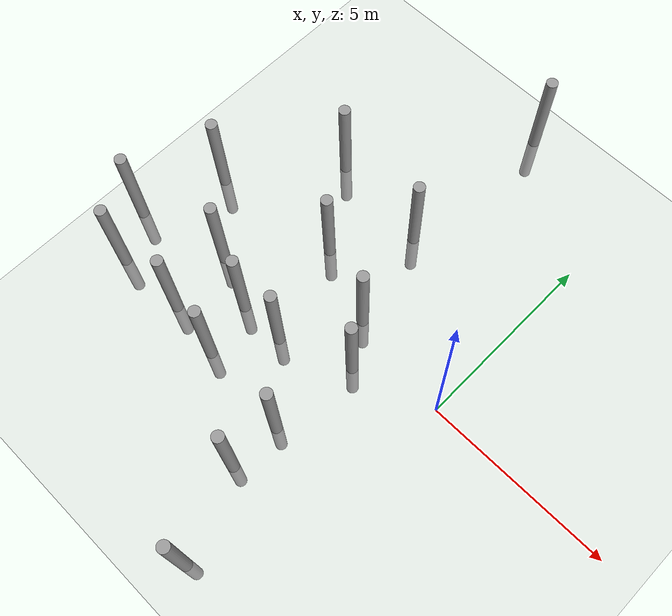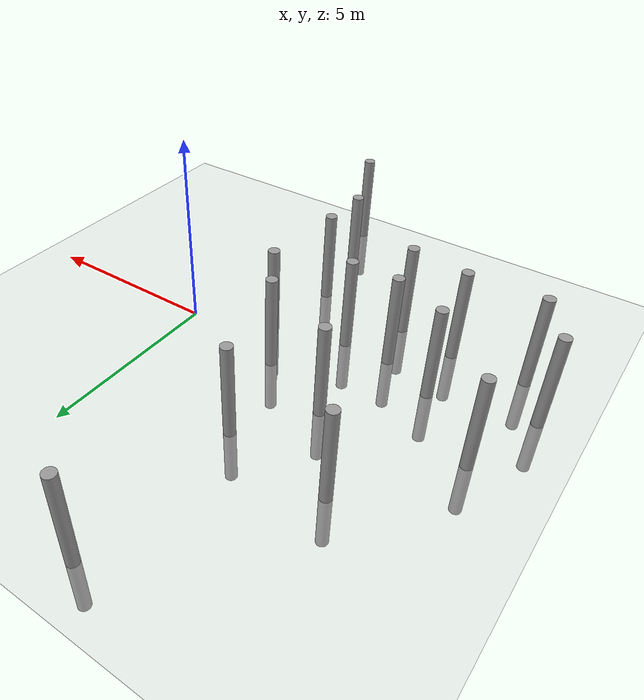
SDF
<sdf version="1.6">
 <world name="default">
  <model name="ground_plane">
   <static>1</static>
   <link name="link">
    <collision name="collision">
     <geometry><plane><normal>0 0 1</normal><size>100 100</size></plane></geometry>
     <surface><friction><ode><mu>100</mu><mu2>50</mu2></ode></friction></surface>
    </collision>
    <visual name="visual">
     <cast_shadows>0</cast_shadows>
     <geometry><plane><normal>0 0 1</normal><size>100 100</size></plane></geometry>
     <material>
      <script><uri>file://media/materials/scripts/gazebo.material</uri><name>Gazebo/Grey</name></script>
     </material>
    </visual>
   </link>
  </model>
  <model name="unit_cylinder">
   <link name="link">
    <inertial>
     <mass>1000</mass>
     <inertia><ixx>145.833</ixx><ixy>0</ixy><ixz>0</ixz><iyy>145.833</iyy><iyz>0</iyz><izz>125</izz></inertia>
    </inertial>
    <visual name="visual">
     <geometry><cylinder><radius>0.15</radius><length>4</length></cylinder></geometry>
     <material>
      <script><name>Gazebo/Grey</name><uri>file://media/materials/scripts/gazebo.material</uri></script>
      <shader type="pixel"><normal_map>__default__</normal_map></shader>
      <ambient>0.3 0.3 0.3 1</ambient>
      <diffuse>0.7 0.7 0.7 1</diffuse>
      <specular>0.01 0.01 0.01 1</specular>
      <emissive>0 0 0 1</emissive>
     </material>
    </visual>
    <collision name="collision">
     <geometry><cylinder><radius>0.15</radius><length>4</length></cylinder></geometry>
     <surface>
      <friction>
       <ode><mu>1</mu><mu2>1</mu2><fdir1>0 0 0</fdir1><slip1>0</slip1><slip2>0</slip2></ode>
       <torsional>
        <coefficient>1</coefficient>
        <patch_radius>0</patch_radius>
        <surface_radius>0</surface_radius>
        <use_patch_radius>1</use_patch_radius>
        <ode><slip>0</slip></ode>
       </torsional>
      </friction>
      <bounce><restitution_coefficient>0</restitution_coefficient><threshold>1e+06</threshold></bounce>
      <contact>
       <collide_without_contact>0</collide_without_contact>
       <collide_without_contact_bitmask>1</collide_without_contact_bitmask>
       <collide_bitmask>1</collide_bitmask>
       <ode>
        <soft_cfm>0</soft_cfm>
        <soft_erp>0.2</soft_erp>
        <kp>1e+13</kp>
        <kd>1</kd>
        <max_vel>0.01</max_vel>
        <min_depth>0</min_depth>
       </ode>
       <bullet>
        <split_impulse>1</split_impulse>
        <split_impulse_penetration_threshold>-0.01</split_impulse_penetration_threshold>
        <soft_cfm>0</soft_cfm>
        <soft_erp>0.2</soft_erp>
        <kp>1e+13</kp>
        <kd>1</kd>
       </bullet>
      </contact>
     </surface>
    </collision>
   </link>
   <static>0</static>
   <pose>-2.17183 -0.620894 0.5 0 -0 0</pose>
  </model>
  <model name="unit_cylinder_clone_4">
   <link name="link">
    <inertial>
     <mass>1000</mass>
     <inertia><ixx>145.833</ixx><ixy>0</ixy><ixz>0</ixz><iyy>145.833</iyy><iyz>0</iyz><izz>125</izz></inertia>
    </inertial>
    <visual name="visual">
     <geometry><cylinder><radius>0.15</radius><length>4</length></cylinder></geometry>
     <material>
      <script><name>Gazebo/Grey</name><uri>file://media/materials/scripts/gazebo.material</uri></script>
      <shader type="pixel"><normal_map>__default__</normal_map></shader>
      <ambient>0.3 0.3 0.3 1</ambient>
      <diffuse>0.7 0.7 0.7 1</diffuse>
      <specular>0.01 0.01 0.01 1</specular>
      <emissive>0 0 0 1</emissive>
     </material>
    </visual>
    <collision name="collision">
     <geometry><cylinder><radius>0.15</radius><length>4</length></cylinder></geometry>
     <surface>
      <friction>
       <ode><mu>1</mu><mu2>1</mu2><fdir1>0 0 0</fdir1><slip1>0</slip1><slip2>0</slip2></ode>
       <torsional>
        <coefficient>1</coefficient>
        <patch_radius>0</patch_radius>
        <surface_radius>0</surface_radius>
        <use_patch_radius>1</use_patch_radius>
        <ode><slip>0</slip></ode>
       </torsional>
      </friction>
      <bounce><restitution_coefficient>0</restitution_coefficient><threshold>1e+06</threshold></bounce>
      <contact>
       <collide_without_contact>0</collide_without_contact>
       <collide_without_contact_bitmask>1</collide_without_contact_bitmask>
       <collide_bitmask>1</collide_bitmask>
       <ode>
        <soft_cfm>0</soft_cfm>
        <soft_erp>0.2</soft_erp>
        <kp>1e+13</kp>
        <kd>1</kd>
        <max_vel>0.01</max_vel>
        <min_depth>0</min_depth>
       </ode>
       <bullet>
        <split_impulse>1</split_impulse>
        <split_impulse_penetration_threshold>-0.01</split_impulse_penetration_threshold>
        <soft_cfm>0</soft_cfm>
        <soft_erp>0.2</soft_erp>
        <kp>1e+13</kp>
        <kd>1</kd>
       </bullet>
      </contact>
     </surface>
    </collision>
   </link>
   <static>0</static>
   <pose>-3.98102 -1.3286 0.5 0 -0 0</pose>
  </model>
  <model name="unit_cylinder_clone_5">
   <link name="link">
    <inertial>
     <mass>1000</mass>
     <inertia><ixx>145.833</ixx><ixy>0</ixy><ixz>0</ixz><iyy>145.833</iyy><iyz>0</iyz><izz>125</izz></inertia>
    </inertial>
    <visual name="visual">
     <geometry><cylinder><radius>0.15</radius><length>4</length></cylinder></geometry>
     <material>
      <script><name>Gazebo/Grey</name><uri>file://media/materials/scripts/gazebo.material</uri></script>
      <shader type="pixel"><normal_map>__default__</normal_map></shader>
      <ambient>0.3 0.3 0.3 1</ambient>
      <diffuse>0.7 0.7 0.7 1</diffuse>
      <specular>0.01 0.01 0.01 1</specular>
      <emissive>0 0 0 1</emissive>
     </material>
    </visual>
    <collision name="collision">
     <geometry><cylinder><radius>0.15</radius><length>4</length></cylinder></geometry>
     <surface>
      <friction>
       <ode><mu>1</mu><mu2>1</mu2><fdir1>0 0 0</fdir1><slip1>0</slip1><slip2>0</slip2></ode>
       <torsional>
        <coefficient>1</coefficient>
        <patch_radius>0</patch_radius>
        <surface_radius>0</surface_radius>
        <use_patch_radius>1</use_patch_radius>
        <ode><slip>0</slip></ode>
       </torsional>
      </friction>
      <bounce><restitution_coefficient>0</restitution_coefficient><threshold>1e+06</threshold></bounce>
      <contact>
       <collide_without_contact>0</collide_without_contact>
       <collide_without_contact_bitmask>1</collide_without_contact_bitmask>
       <collide_bitmask>1</collide_bitmask>
       <ode>
        <soft_cfm>0</soft_cfm>
        <soft_erp>0.2</soft_erp>
        <kp>1e+13</kp>
        <kd>1</kd>
        <max_vel>0.01</max_vel>
        <min_depth>0</min_depth>
       </ode>
       <bullet>
        <split_impulse>1</split_impulse>
        <split_impulse_penetration_threshold>-0.01</split_impulse_penetration_threshold>
        <soft_cfm>0</soft_cfm>
        <soft_erp>0.2</soft_erp>
        <kp>1e+13</kp>
        <kd>1</kd>
       </bullet>
      </contact>
     </surface>
    </collision>
   </link>
   <static>0</static>
   <pose>-4.8156 1.25326 0.5 0 -0 0</pose>
  </model>
  <model name="unit_cylinder_clone_6">
   <link name="link">
    <inertial>
     <mass>1000</mass>
     <inertia><ixx>145.833</ixx><ixy>0</ixy><ixz>0</ixz><iyy>145.833</iyy><iyz>0</iyz><izz>125</izz></inertia>
    </inertial>
    <visual name="visual">
     <geometry><cylinder><radius>0.15</radius><length>4</length></cylinder></geometry>
     <material>
      <script><name>Gazebo/Grey</name><uri>file://media/materials/scripts/gazebo.material</uri></script>
      <shader type="pixel"><normal_map>__default__</normal_map></shader>
      <ambient>0.3 0.3 0.3 1</ambient>
      <diffuse>0.7 0.7 0.7 1</diffuse>
      <specular>0.01 0.01 0.01 1</specular>
      <emissive>0 0 0 1</emissive>
     </material>
    </visual>
    <collision name="collision">
     <geometry><cylinder><radius>0.15</radius><length>4</length></cylinder></geometry>
     <surface>
      <friction>
       <ode><mu>1</mu><mu2>1</mu2><fdir1>0 0 0</fdir1><slip1>0</slip1><slip2>0</slip2></ode>
       <torsional>
        <coefficient>1</coefficient>
        <patch_radius>0</patch_radius>
        <surface_radius>0</surface_radius>
        <use_patch_radius>1</use_patch_radius>
        <ode><slip>0</slip></ode>
       </torsional>
      </friction>
      <bounce><restitution_coefficient>0</restitution_coefficient><threshold>1e+06</threshold></bounce>
      <contact>
       <collide_without_contact>0</collide_without_contact>
       <collide_without_contact_bitmask>1</collide_without_contact_bitmask>
       <collide_bitmask>1</collide_bitmask>
       <ode>
        <soft_cfm>0</soft_cfm>
        <soft_erp>0.2</soft_erp>
        <kp>1e+13</kp>
        <kd>1</kd>
        <max_vel>0.01</max_vel>
        <min_depth>0</min_depth>
       </ode>
       <bullet>
        <split_impulse>1</split_impulse>
        <split_impulse_penetration_threshold>-0.01</split_impulse_penetration_threshold>
        <soft_cfm>0</soft_cfm>
        <soft_erp>0.2</soft_erp>
        <kp>1e+13</kp>
        <kd>1</kd>
       </bullet>
      </contact>
     </surface>
    </collision>
   </link>
   <static>0</static>
   <pose>-3.52334 3 0.5 0 -0 0</pose>
  </model>
  <model name="unit_cylinder_clone_7">
   <link name="link">
    <inertial>
     <mass>1000</mass>
     <inertia><ixx>145.833</ixx><ixy>0</ixy><ixz>0</ixz><iyy>145.833</iyy><iyz>0</iyz><izz>125</izz></inertia>
    </inertial>
    <visual name="visual">
     <geometry><cylinder><radius>0.15</radius><length>4</length></cylinder></geometry>
     <material>
      <script><name>Gazebo/Grey</name><uri>file://media/materials/scripts/gazebo.material</uri></script>
      <shader type="pixel"><normal_map>__default__</normal_map></shader>
      <ambient>0.3 0.3 0.3 1</ambient>
      <diffuse>0.7 0.7 0.7 1</diffuse>
      <specular>0.01 0.01 0.01 1</specular>
      <emissive>0 0 0 1</emissive>
     </material>
    </visual>
    <collision name="collision">
     <geometry><cylinder><radius>0.15</radius><length>4</length></cylinder></geometry>
     <surface>
      <friction>
       <ode><mu>1</mu><mu2>1</mu2><fdir1>0 0 0</fdir1><slip1>0</slip1><slip2>0</slip2></ode>
       <torsional>
        <coefficient>1</coefficient>
        <patch_radius>0</patch_radius>
        <surface_radius>0</surface_radius>
        <use_patch_radius>1</use_patch_radius>
        <ode><slip>0</slip></ode>
       </torsional>
      </friction>
      <bounce><restitution_coefficient>0</restitution_coefficient><threshold>1e+06</threshold></bounce>
      <contact>
       <collide_without_contact>0</collide_without_contact>
       <collide_without_contact_bitmask>1</collide_without_contact_bitmask>
       <collide_bitmask>1</collide_bitmask>
       <ode>
        <soft_cfm>0</soft_cfm>
        <soft_erp>0.2</soft_erp>
        <kp>1e+13</kp>
        <kd>1</kd>
        <max_vel>0.01</max_vel>
        <min_depth>0</min_depth>
       </ode>
       <bullet>
        <split_impulse>1</split_impulse>
        <split_impulse_penetration_threshold>-0.01</split_impulse_penetration_threshold>
        <soft_cfm>0</soft_cfm>
        <soft_erp>0.2</soft_erp>
        <kp>1e+13</kp>
        <kd>1</kd>
       </bullet>
      </contact>
     </surface>
    </collision>
   </link>
   <static>0</static>
   <pose>-2.40002 -2.93205 0.5 0 -0 0</pose>
  </model>
  <model name="unit_cylinder_clone_8">
   <link name="link">
    <inertial>
     <mass>1000</mass>
     <inertia><ixx>145.833</ixx><ixy>0</ixy><ixz>0</ixz><iyy>145.833</iyy><iyz>0</iyz><izz>125</izz></inertia>
    </inertial>
    <visual name="visual">
     <geometry><cylinder><radius>0.15</radius><length>4</length></cylinder></geometry>
     <material>
      <script><name>Gazebo/Grey</name><uri>file://media/materials/scripts/gazebo.material</uri></script>
      <shader type="pixel"><normal_map>__default__</normal_map></shader>
      <ambient>0.3 0.3 0.3 1</ambient>
      <diffuse>0.7 0.7 0.7 1</diffuse>
      <specular>0.01 0.01 0.01 1</specular>
      <emissive>0 0 0 1</emissive>
     </material>
    </visual>
    <collision name="collision">
     <geometry><cylinder><radius>0.15</radius><length>4</length></cylinder></geometry>
     <surface>
      <friction>
       <ode><mu>1</mu><mu2>1</mu2><fdir1>0 0 0</fdir1><slip1>0</slip1><slip2>0</slip2></ode>
       <torsional>
        <coefficient>1</coefficient>
        <patch_radius>0</patch_radius>
        <surface_radius>0</surface_radius>
        <use_patch_radius>1</use_patch_radius>
        <ode><slip>0</slip></ode>
       </torsional>
      </friction>
      <bounce><restitution_coefficient>0</restitution_coefficient><threshold>1e+06</threshold></bounce>
      <contact>
       <collide_without_contact>0</collide_without_contact>
       <collide_without_contact_bitmask>1</collide_without_contact_bitmask>
       <collide_bitmask>1</collide_bitmask>
       <ode>
        <soft_cfm>0</soft_cfm>
        <soft_erp>0.2</soft_erp>
        <kp>1e+13</kp>
        <kd>1</kd>
        <max_vel>0.01</max_vel>
        <min_depth>0</min_depth>
       </ode>
       <bullet>
        <split_impulse>1</split_impulse>
        <split_impulse_penetration_threshold>-0.01</split_impulse_penetration_threshold>
        <soft_cfm>0</soft_cfm>
        <soft_erp>0.2</soft_erp>
        <kp>1e+13</kp>
        <kd>1</kd>
       </bullet>
      </contact>
     </surface>
    </collision>
   </link>
   <static>0</static>
   <pose>-2.8562 0.444252 0.5 0 -0 0</pose>
  </model>
  <model name="unit_cylinder_clone_10">
   <link name="link">
    <inertial>
     <mass>1000</mass>
     <inertia><ixx>145.833</ixx><ixy>0</ixy><ixz>0</ixz><iyy>145.833</iyy><iyz>0</iyz><izz>125</izz></inertia>
    </inertial>
    <visual name="visual">
     <geometry><cylinder><radius>0.15</radius><length>4</length></cylinder></geometry>
     <material>
      <script><name>Gazebo/Grey</name><uri>file://media/materials/scripts/gazebo.material</uri></script>
      <shader type="pixel"><normal_map>__default__</normal_map></shader>
      <ambient>0.3 0.3 0.3 1</ambient>
      <diffuse>0.7 0.7 0.7 1</diffuse>
      <specular>0.01 0.01 0.01 1</specular>
      <emissive>0 0 0 1</emissive>
     </material>
    </visual>
    <collision name="collision">
     <geometry><cylinder><radius>0.15</radius><length>4</length></cylinder></geometry>
     <surface>
      <friction>
       <ode><mu>1</mu><mu2>1</mu2><fdir1>0 0 0</fdir1><slip1>0</slip1><slip2>0</slip2></ode>
       <torsional>
        <coefficient>1</coefficient>
        <patch_radius>0</patch_radius>
        <surface_radius>0</surface_radius>
        <use_patch_radius>1</use_patch_radius>
        <ode><slip>0</slip></ode>
       </torsional>
      </friction>
      <bounce><restitution_coefficient>0</restitution_coefficient><threshold>1e+06</threshold></bounce>
      <contact>
       <collide_without_contact>0</collide_without_contact>
       <collide_without_contact_bitmask>1</collide_without_contact_bitmask>
       <collide_bitmask>1</collide_bitmask>
       <ode>
        <soft_cfm>0</soft_cfm>
        <soft_erp>0.2</soft_erp>
        <kp>1e+13</kp>
        <kd>1</kd>
        <max_vel>0.01</max_vel>
        <min_depth>0</min_depth>
       </ode>
       <bullet>
        <split_impulse>1</split_impulse>
        <split_impulse_penetration_threshold>-0.01</split_impulse_penetration_threshold>
        <soft_cfm>0</soft_cfm>
        <soft_erp>0.2</soft_erp>
        <kp>1e+13</kp>
        <kd>1</kd>
       </bullet>
      </contact>
     </surface>
    </collision>
   </link>
   <static>0</static>
   <pose>-6.4237 -2.50142 0.5 0 -0 0</pose>
  </model>
  <model name="unit_cylinder_clone_11">
   <link name="link">
    <inertial>
     <mass>1000</mass>
     <inertia><ixx>145.833</ixx><ixy>0</ixy><ixz>0</ixz><iyy>145.833</iyy><iyz>0</iyz><izz>125</izz></inertia>
    </inertial>
    <visual name="visual">
     <geometry><cylinder><radius>0.15</radius><length>4</length></cylinder></geometry>
     <material>
      <script><name>Gazebo/Grey</name><uri>file://media/materials/scripts/gazebo.material</uri></script>
      <shader type="pixel"><normal_map>__default__</normal_map></shader>
      <ambient>0.3 0.3 0.3 1</ambient>
      <diffuse>0.7 0.7 0.7 1</diffuse>
      <specular>0.01 0.01 0.01 1</specular>
      <emissive>0 0 0 1</emissive>
     </material>
    </visual>
    <collision name="collision">
     <geometry><cylinder><radius>0.15</radius><length>4</length></cylinder></geometry>
     <surface>
      <friction>
       <ode><mu>1</mu><mu2>1</mu2><fdir1>0 0 0</fdir1><slip1>0</slip1><slip2>0</slip2></ode>
       <torsional>
        <coefficient>1</coefficient>
        <patch_radius>0</patch_radius>
        <surface_radius>0</surface_radius>
        <use_patch_radius>1</use_patch_radius>
        <ode><slip>0</slip></ode>
       </torsional>
      </friction>
      <bounce><restitution_coefficient>0</restitution_coefficient><threshold>1e+06</threshold></bounce>
      <contact>
       <collide_without_contact>0</collide_without_contact>
       <collide_without_contact_bitmask>1</collide_without_contact_bitmask>
       <collide_bitmask>1</collide_bitmask>
       <ode>
        <soft_cfm>0</soft_cfm>
        <soft_erp>0.2</soft_erp>
        <kp>1e+13</kp>
        <kd>1</kd>
        <max_vel>0.01</max_vel>
        <min_depth>0</min_depth>
       </ode>
       <bullet>
        <split_impulse>1</split_impulse>
        <split_impulse_penetration_threshold>-0.01</split_impulse_penetration_threshold>
        <soft_cfm>0</soft_cfm>
        <soft_erp>0.2</soft_erp>
        <kp>1e+13</kp>
        <kd>1</kd>
       </bullet>
      </contact>
     </surface>
    </collision>
   </link>
   <static>0</static>
   <pose>-4.89766 -2.73786 0.5 0 -0 0</pose>
  </model>
  <model name="unit_cylinder_clone_13">
   <link name="link">
    <inertial>
     <mass>1000</mass>
     <inertia><ixx>145.833</ixx><ixy>0</ixy><ixz>0</ixz><iyy>145.833</iyy><iyz>0</iyz><izz>125</izz></inertia>
    </inertial>
    <visual name="visual">
     <geometry><cylinder><radius>0.15</radius><length>4</length></cylinder></geometry>
     <material>
      <script><name>Gazebo/Grey</name><uri>file://media/materials/scripts/gazebo.material</uri></script>
      <shader type="pixel"><normal_map>__default__</normal_map></shader>
      <ambient>0.3 0.3 0.3 1</ambient>
      <diffuse>0.7 0.7 0.7 1</diffuse>
      <specular>0.01 0.01 0.01 1</specular>
      <emissive>0 0 0 1</emissive>
     </material>
    </visual>
    <collision name="collision">
     <geometry><cylinder><radius>0.15</radius><length>4</length></cylinder></geometry>
     <surface>
      <friction>
       <ode><mu>1</mu><mu2>1</mu2><fdir1>0 0 0</fdir1><slip1>0</slip1><slip2>0</slip2></ode>
       <torsional>
        <coefficient>1</coefficient>
        <patch_radius>0</patch_radius>
        <surface_radius>0</surface_radius>
        <use_patch_radius>1</use_patch_radius>
        <ode><slip>0</slip></ode>
       </torsional>
      </friction>
      <bounce><restitution_coefficient>0</restitution_coefficient><threshold>1e+06</threshold></bounce>
      <contact>
       <collide_without_contact>0</collide_without_contact>
       <collide_without_contact_bitmask>1</collide_without_contact_bitmask>
       <collide_bitmask>1</collide_bitmask>
       <ode>
        <soft_cfm>0</soft_cfm>
        <soft_erp>0.2</soft_erp>
        <kp>1e+13</kp>
        <kd>1</kd>
        <max_vel>0.01</max_vel>
        <min_depth>0</min_depth>
       </ode>
       <bullet>
        <split_impulse>1</split_impulse>
        <split_impulse_penetration_threshold>-0.01</split_impulse_penetration_threshold>
        <soft_cfm>0</soft_cfm>
        <soft_erp>0.2</soft_erp>
        <kp>1e+13</kp>
        <kd>1</kd>
       </bullet>
      </contact>
     </surface>
    </collision>
   </link>
   <static>0</static>
   <pose>-5.21834 -1.32994 0.5 0 -0 0</pose>
  </model>
  <model name="unit_cylinder_clone_14">
   <link name="link">
    <inertial>
     <mass>1000</mass>
     <inertia><ixx>145.833</ixx><ixy>0</ixy><ixz>0</ixz><iyy>145.833</iyy><iyz>0</iyz><izz>125</izz></inertia>
    </inertial>
    <visual name="visual">
     <geometry><cylinder><radius>0.15</radius><length>4</length></cylinder></geometry>
     <material>
      <script><name>Gazebo/Grey</name><uri>file://media/materials/scripts/gazebo.material</uri></script>
      <shader type="pixel"><normal_map>__default__</normal_map></shader>
      <ambient>0.3 0.3 0.3 1</ambient>
      <diffuse>0.7 0.7 0.7 1</diffuse>
      <specular>0.01 0.01 0.01 1</specular>
      <emissive>0 0 0 1</emissive>
     </material>
    </visual>
    <collision name="collision">
     <geometry><cylinder><radius>0.15</radius><length>4</length></cylinder></geometry>
     <surface>
      <friction>
       <ode><mu>1</mu><mu2>1</mu2><fdir1>0 0 0</fdir1><slip1>0</slip1><slip2>0</slip2></ode>
       <torsional>
        <coefficient>1</coefficient>
        <patch_radius>0</patch_radius>
        <surface_radius>0</surface_radius>
        <use_patch_radius>1</use_patch_radius>
        <ode><slip>0</slip></ode>
       </torsional>
      </friction>
      <bounce><restitution_coefficient>0</restitution_coefficient><threshold>1e+06</threshold></bounce>
      <contact>
       <collide_without_contact>0</collide_without_contact>
       <collide_without_contact_bitmask>1</collide_without_contact_bitmask>
       <collide_bitmask>1</collide_bitmask>
       <ode>
        <soft_cfm>0</soft_cfm>
        <soft_erp>0.2</soft_erp>
        <kp>1e+13</kp>
        <kd>1</kd>
        <max_vel>0.01</max_vel>
        <min_depth>0</min_depth>
       </ode>
       <bullet>
        <split_impulse>1</split_impulse>
        <split_impulse_penetration_threshold>-0.01</split_impulse_penetration_threshold>
        <soft_cfm>0</soft_cfm>
        <soft_erp>0.2</soft_erp>
        <kp>1e+13</kp>
        <kd>1</kd>
       </bullet>
      </contact>
     </surface>
    </collision>
   </link>
   <static>0</static>
   <pose>-6.57296 -0.7684 0.5 0 -0 0</pose>
  </model>
  <model name="unit_cylinder_clone_15">
   <link name="link">
    <inertial>
     <mass>1000</mass>
     <inertia><ixx>145.833</ixx><ixy>0</ixy><ixz>0</ixz><iyy>145.833</iyy><iyz>0</iyz><izz>125</izz></inertia>
    </inertial>
    <visual name="visual">
     <geometry><cylinder><radius>0.15</radius><length>4</length></cylinder></geometry>
     <material>
      <script><name>Gazebo/Grey</name><uri>file://media/materials/scripts/gazebo.material</uri></script>
      <shader type="pixel"><normal_map>__default__</normal_map></shader>
      <ambient>0.3 0.3 0.3 1</ambient>
      <diffuse>0.7 0.7 0.7 1</diffuse>
      <specular>0.01 0.01 0.01 1</specular>
      <emissive>0 0 0 1</emissive>
     </material>
    </visual>
    <collision name="collision">
     <geometry><cylinder><radius>0.15</radius><length>4</length></cylinder></geometry>
     <surface>
      <friction>
       <ode><mu>1</mu><mu2>1</mu2><fdir1>0 0 0</fdir1><slip1>0</slip1><slip2>0</slip2></ode>
       <torsional>
        <coefficient>1</coefficient>
        <patch_radius>0</patch_radius>
        <surface_radius>0</surface_radius>
        <use_patch_radius>1</use_patch_radius>
        <ode><slip>0</slip></ode>
       </torsional>
      </friction>
      <bounce><restitution_coefficient>0</restitution_coefficient><threshold>1e+06</threshold></bounce>
      <contact>
       <collide_without_contact>0</collide_without_contact>
       <collide_without_contact_bitmask>1</collide_without_contact_bitmask>
       <collide_bitmask>1</collide_bitmask>
       <ode>
        <soft_cfm>0</soft_cfm>
        <soft_erp>0.2</soft_erp>
        <kp>1e+13</kp>
        <kd>1</kd>
        <max_vel>0.01</max_vel>
        <min_depth>0</min_depth>
       </ode>
       <bullet>
        <split_impulse>1</split_impulse>
        <split_impulse_penetration_threshold>-0.01</split_impulse_penetration_threshold>
        <soft_cfm>0</soft_cfm>
        <soft_erp>0.2</soft_erp>
        <kp>1e+13</kp>
        <kd>1</kd>
       </bullet>
      </contact>
     </surface>
    </collision>
   </link>
   <static>0</static>
   <pose>-8.3288 -2.56429 0.5 0 -0 0</pose>
  </model>
  <model name="unit_cylinder_clone_16">
   <link name="link">
    <inertial>
     <mass>1000</mass>
     <inertia><ixx>145.833</ixx><ixy>0</ixy><ixz>0</ixz><iyy>145.833</iyy><iyz>0</iyz><izz>125</izz></inertia>
    </inertial>
    <visual name="visual">
     <geometry><cylinder><radius>0.15</radius><length>4</length></cylinder></geometry>
     <material>
      <script><name>Gazebo/Grey</name><uri>file://media/materials/scripts/gazebo.material</uri></script>
      <shader type="pixel"><normal_map>__default__</normal_map></shader>
      <ambient>0.3 0.3 0.3 1</ambient>
      <diffuse>0.7 0.7 0.7 1</diffuse>
      <specular>0.01 0.01 0.01 1</specular>
      <emissive>0 0 0 1</emissive>
     </material>
    </visual>
    <collision name="collision">
     <geometry><cylinder><radius>0.15</radius><length>4</length></cylinder></geometry>
     <surface>
      <friction>
       <ode><mu>1</mu><mu2>1</mu2><fdir1>0 0 0</fdir1><slip1>0</slip1><slip2>0</slip2></ode>
       <torsional>
        <coefficient>1</coefficient>
        <patch_radius>0</patch_radius>
        <surface_radius>0</surface_radius>
        <use_patch_radius>1</use_patch_radius>
        <ode><slip>0</slip></ode>
       </torsional>
      </friction>
      <bounce><restitution_coefficient>0</restitution_coefficient><threshold>1e+06</threshold></bounce>
      <contact>
       <collide_without_contact>0</collide_without_contact>
       <collide_without_contact_bitmask>1</collide_without_contact_bitmask>
       <collide_bitmask>1</collide_bitmask>
       <ode>
        <soft_cfm>0</soft_cfm>
        <soft_erp>0.2</soft_erp>
        <kp>1e+13</kp>
        <kd>1</kd>
        <max_vel>0.01</max_vel>
        <min_depth>0</min_depth>
       </ode>
       <bullet>
        <split_impulse>1</split_impulse>
        <split_impulse_penetration_threshold>-0.01</split_impulse_penetration_threshold>
        <soft_cfm>0</soft_cfm>
        <soft_erp>0.2</soft_erp>
        <kp>1e+13</kp>
        <kd>1</kd>
       </bullet>
      </contact>
     </surface>
    </collision>
   </link>
   <static>0</static>
   <pose>-9.06637 -1.36039 0.5 0 -0 0</pose>
  </model>
  <model name="unit_cylinder_clone_17">
   <link name="link">
    <inertial>
     <mass>1000</mass>
     <inertia><ixx>145.833</ixx><ixy>0</ixy><ixz>0</ixz><iyy>145.833</iyy><iyz>0</iyz><izz>125</izz></inertia>
    </inertial>
    <visual name="visual">
     <geometry><cylinder><radius>0.15</radius><length>4</length></cylinder></geometry>
     <material>
      <script><name>Gazebo/Grey</name><uri>file://media/materials/scripts/gazebo.material</uri></script>
      <shader type="pixel"><normal_map>__default__</normal_map></shader>
      <ambient>0.3 0.3 0.3 1</ambient>
      <diffuse>0.7 0.7 0.7 1</diffuse>
      <specular>0.01 0.01 0.01 1</specular>
      <emissive>0 0 0 1</emissive>
     </material>
    </visual>
    <collision name="collision">
     <geometry><cylinder><radius>0.15</radius><length>4</length></cylinder></geometry>
     <surface>
      <friction>
       <ode><mu>1</mu><mu2>1</mu2><fdir1>0 0 0</fdir1><slip1>0</slip1><slip2>0</slip2></ode>
       <torsional>
        <coefficient>1</coefficient>
        <patch_radius>0</patch_radius>
        <surface_radius>0</surface_radius>
        <use_patch_radius>1</use_patch_radius>
        <ode><slip>0</slip></ode>
       </torsional>
      </friction>
      <bounce><restitution_coefficient>0</restitution_coefficient><threshold>1e+06</threshold></bounce>
      <contact>
       <collide_without_contact>0</collide_without_contact>
       <collide_without_contact_bitmask>1</collide_without_contact_bitmask>
       <collide_bitmask>1</collide_bitmask>
       <ode>
        <soft_cfm>0</soft_cfm>
        <soft_erp>0.2</soft_erp>
        <kp>1e+13</kp>
        <kd>1</kd>
        <max_vel>0.01</max_vel>
        <min_depth>0</min_depth>
       </ode>
       <bullet>
        <split_impulse>1</split_impulse>
        <split_impulse_penetration_threshold>-0.01</split_impulse_penetration_threshold>
        <soft_cfm>0</soft_cfm>
        <soft_erp>0.2</soft_erp>
        <kp>1e+13</kp>
        <kd>1</kd>
       </bullet>
      </contact>
     </surface>
    </collision>
   </link>
   <static>0</static>
   <pose>-8.26983 0.791501 0.5 0 -0 0</pose>
  </model>
  <model name="unit_cylinder_clone_19">
   <link name="link">
    <inertial>
     <mass>1000</mass>
     <inertia><ixx>145.833</ixx><ixy>0</ixy><ixz>0</ixz><iyy>145.833</iyy><iyz>0</iyz><izz>125</izz></inertia>
    </inertial>
    <visual name="visual">
     <geometry><cylinder><radius>0.15</radius><length>4</length></cylinder></geometry>
     <material>
      <script><name>Gazebo/Grey</name><uri>file://media/materials/scripts/gazebo.material</uri></script>
      <shader type="pixel"><normal_map>__default__</normal_map></shader>
      <ambient>0.3 0.3 0.3 1</ambient>
      <diffuse>0.7 0.7 0.7 1</diffuse>
      <specular>0.01 0.01 0.01 1</specular>
      <emissive>0 0 0 1</emissive>
     </material>
    </visual>
    <collision name="collision">
     <geometry><cylinder><radius>0.15</radius><length>4</length></cylinder></geometry>
     <surface>
      <friction>
       <ode><mu>1</mu><mu2>1</mu2><fdir1>0 0 0</fdir1><slip1>0</slip1><slip2>0</slip2></ode>
       <torsional>
        <coefficient>1</coefficient>
        <patch_radius>0</patch_radius>
        <surface_radius>0</surface_radius>
        <use_patch_radius>1</use_patch_radius>
        <ode><slip>0</slip></ode>
       </torsional>
      </friction>
      <bounce><restitution_coefficient>0</restitution_coefficient><threshold>1e+06</threshold></bounce>
      <contact>
       <collide_without_contact>0</collide_without_contact>
       <collide_without_contact_bitmask>1</collide_without_contact_bitmask>
       <collide_bitmask>1</collide_bitmask>
       <ode>
        <soft_cfm>0</soft_cfm>
        <soft_erp>0.2</soft_erp>
        <kp>1e+13</kp>
        <kd>1</kd>
        <max_vel>0.01</max_vel>
        <min_depth>0</min_depth>
       </ode>
       <bullet>
        <split_impulse>1</split_impulse>
        <split_impulse_penetration_threshold>-0.01</split_impulse_penetration_threshold>
        <soft_cfm>0</soft_cfm>
        <soft_erp>0.2</soft_erp>
        <kp>1e+13</kp>
        <kd>1</kd>
       </bullet>
      </contact>
     </surface>
    </collision>
   </link>
   <static>0</static>
   <pose>-3.20769 7.43025 0.5 0 -0 0</pose>
  </model>
  <model name="unit_cylinder_clone_39">
   <link name="link">
    <inertial>
     <mass>1000</mass>
     <inertia><ixx>145.833</ixx><ixy>0</ixy><ixz>0</ixz><iyy>145.833</iyy><iyz>0</iyz><izz>125</izz></inertia>
    </inertial>
    <visual name="visual">
     <geometry><cylinder><radius>0.15</radius><length>4</length></cylinder></geometry>
     <material>
      <script><name>Gazebo/Grey</name><uri>file://media/materials/scripts/gazebo.material</uri></script>
      <shader type="pixel"><normal_map>__default__</normal_map></shader>
      <ambient>0.3 0.3 0.3 1</ambient>
      <diffuse>0.7 0.7 0.7 1</diffuse>
      <specular>0.01 0.01 0.01 1</specular>
      <emissive>0 0 0 1</emissive>
     </material>
    </visual>
    <collision name="collision">
     <geometry><cylinder><radius>0.15</radius><length>4</length></cylinder></geometry>
     <surface>
      <friction>
       <ode><mu>1</mu><mu2>1</mu2><fdir1>0 0 0</fdir1><slip1>0</slip1><slip2>0</slip2></ode>
       <torsional>
        <coefficient>1</coefficient>
        <patch_radius>0</patch_radius>
        <surface_radius>0</surface_radius>
        <use_patch_radius>1</use_patch_radius>
        <ode><slip>0</slip></ode>
       </torsional>
      </friction>
      <bounce><restitution_coefficient>0</restitution_coefficient><threshold>1e+06</threshold></bounce>
      <contact>
       <collide_without_contact>0</collide_without_contact>
       <collide_without_contact_bitmask>1</collide_without_contact_bitmask>
       <collide_bitmask>1</collide_bitmask>
       <ode>
        <soft_cfm>0</soft_cfm>
        <soft_erp>0.2</soft_erp>
        <kp>1e+13</kp>
        <kd>1</kd>
        <max_vel>0.01</max_vel>
        <min_depth>0</min_depth>
       </ode>
       <bullet>
        <split_impulse>1</split_impulse>
        <split_impulse_penetration_threshold>-0.01</split_impulse_penetration_threshold>
        <soft_cfm>0</soft_cfm>
        <soft_erp>0.2</soft_erp>
        <kp>1e+13</kp>
        <kd>1</kd>
       </bullet>
      </contact>
     </surface>
    </collision>
   </link>
   <static>0</static>
   <pose>-1.55225 -6.51063 0.5 0 -0 0</pose>
  </model>
  <model name="unit_cylinder_clone_43">
   <link name="link">
    <inertial>
     <mass>1000</mass>
     <inertia><ixx>145.833</ixx><ixy>0</ixy><ixz>0</ixz><iyy>145.833</iyy><iyz>0</iyz><izz>125</izz></inertia>
    </inertial>
    <visual name="visual">
     <geometry><cylinder><radius>0.15</radius><length>4</length></cylinder></geometry>
     <material>
      <script><name>Gazebo/Grey</name><uri>file://media/materials/scripts/gazebo.material</uri></script>
      <shader type="pixel"><normal_map>__default__</normal_map></shader>
      <ambient>0.3 0.3 0.3 1</ambient>
      <diffuse>0.7 0.7 0.7 1</diffuse>
      <specular>0.01 0.01 0.01 1</specular>
      <emissive>0 0 0 1</emissive>
     </material>
    </visual>
    <collision name="collision">
     <geometry><cylinder><radius>0.15</radius><length>4</length></cylinder></geometry>
     <surface>
      <friction>
       <ode><mu>1</mu><mu2>1</mu2><fdir1>0 0 0</fdir1><slip1>0</slip1><slip2>0</slip2></ode>
       <torsional>
        <coefficient>1</coefficient>
        <patch_radius>0</patch_radius>
        <surface_radius>0</surface_radius>
        <use_patch_radius>1</use_patch_radius>
        <ode><slip>0</slip></ode>
       </torsional>
      </friction>
      <bounce><restitution_coefficient>0</restitution_coefficient><threshold>1e+06</threshold></bounce>
      <contact>
       <collide_without_contact>0</collide_without_contact>
       <collide_without_contact_bitmask>1</collide_without_contact_bitmask>
       <collide_bitmask>1</collide_bitmask>
       <ode>
        <soft_cfm>0</soft_cfm>
        <soft_erp>0.2</soft_erp>
        <kp>1e+13</kp>
        <kd>1</kd>
        <max_vel>0.01</max_vel>
        <min_depth>0</min_depth>
       </ode>
       <bullet>
        <split_impulse>1</split_impulse>
        <split_impulse_penetration_threshold>-0.01</split_impulse_penetration_threshold>
        <soft_cfm>0</soft_cfm>
        <soft_erp>0.2</soft_erp>
        <kp>1e+13</kp>
        <kd>1</kd>
       </bullet>
      </contact>
     </surface>
    </collision>
   </link>
   <static>0</static>
   <pose>-2.44251 -4.26863 0.5 0 -0 0</pose>
  </model>
  <model name="unit_cylinder_clone_8_clone">
   <link name="link">
    <inertial>
     <mass>1000</mass>
     <inertia><ixx>145.833</ixx><ixy>0</ixy><ixz>0</ixz><iyy>145.833</iyy><iyz>0</iyz><izz>125</izz></inertia>
    </inertial>
    <visual name="visual">
     <geometry><cylinder><radius>0.15</radius><length>4</length></cylinder></geometry>
     <material>
      <script><name>Gazebo/Grey</name><uri>file://media/materials/scripts/gazebo.material</uri></script>
      <shader type="pixel"><normal_map>__default__</normal_map></shader>
      <ambient>0.3 0.3 0.3 1</ambient>
      <diffuse>0.7 0.7 0.7 1</diffuse>
      <specular>0.01 0.01 0.01 1</specular>
      <emissive>0 0 0 1</emissive>
     </material>
    </visual>
    <collision name="collision">
     <geometry><cylinder><radius>0.15</radius><length>4</length></cylinder></geometry>
     <surface>
      <friction>
       <ode><mu>1</mu><mu2>1</mu2><fdir1>0 0 0</fdir1><slip1>0</slip1><slip2>0</slip2></ode>
       <torsional>
        <coefficient>1</coefficient>
        <patch_radius>0</patch_radius>
        <surface_radius>0</surface_radius>
        <use_patch_radius>1</use_patch_radius>
        <ode><slip>0</slip></ode>
       </torsional>
      </friction>
      <bounce><restitution_coefficient>0</restitution_coefficient><threshold>1e+06</threshold></bounce>
      <contact>
       <collide_without_contact>0</collide_without_contact>
       <collide_without_contact_bitmask>1</collide_without_contact_bitmask>
       <collide_bitmask>1</collide_bitmask>
       <ode>
        <soft_cfm>0</soft_cfm>
        <soft_erp>0.2</soft_erp>
        <kp>1e+13</kp>
        <kd>1</kd>
        <max_vel>0.01</max_vel>
        <min_depth>0</min_depth>
       </ode>
       <bullet>
        <split_impulse>1</split_impulse>
        <split_impulse_penetration_threshold>-0.01</split_impulse_penetration_threshold>
        <soft_cfm>0</soft_cfm>
        <soft_erp>0.2</soft_erp>
        <kp>1e+13</kp>
        <kd>1</kd>
       </bullet>
      </contact>
     </surface>
    </collision>
   </link>
   <static>0</static>
   <pose>-6.27261 3.31101 0.5 0 -0 0</pose>
  </model>
 </world>
</sdf>
